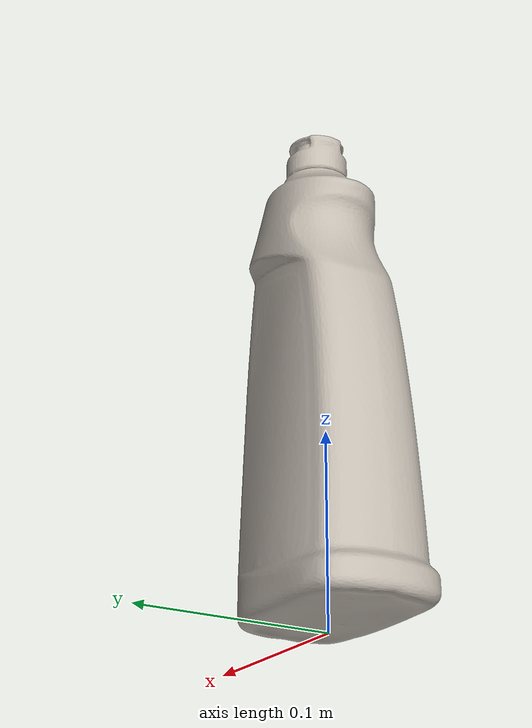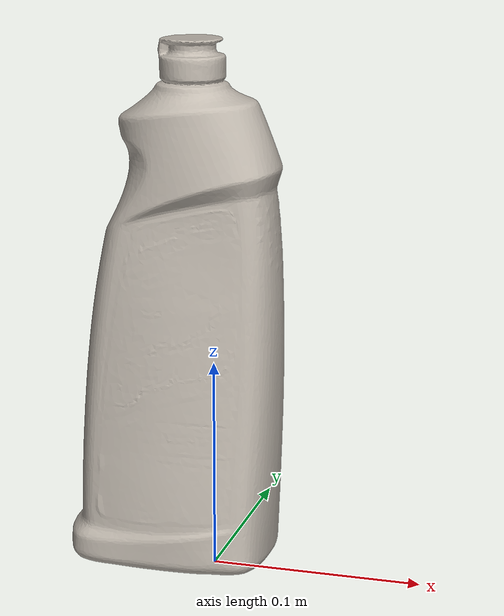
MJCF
<mujoco model="bleach_cleanser">
  <compiler angle="radian" meshdir="assets" texturedir="assets"/>
    <default>
        <default class="ycb_col">
            <geom contype="1" conaffinity="1" group="3" rgba=".4 .5 .6 1"/>
        </default>
        <default class="ycb_viz">
            <geom contype="0" conaffinity="0" type="mesh" mass="0"/>
        </default>
    </default>

  <asset>
    <texture type="2d" name="bleach_cleanser_tex" file="texture_map.png"/>
    <material name="bleach_cleanser_mat" texture="bleach_cleanser_tex" specular="0.5" shininess="0.5"/>
    <mesh file="textured.obj" name="bleach_cleanser"/>
    <mesh file="textured_collision_0.obj" name="bleach_cleanser_collision_0"/>
    <mesh file="textured_collision_1.obj" name="bleach_cleanser_collision_1"/>
    <mesh file="textured_collision_2.obj" name="bleach_cleanser_collision_2"/>
  </asset>
  <worldbody>
      <geom class="ycb_viz" material="bleach_cleanser_mat" mesh="bleach_cleanser"/>
      <geom class="ycb_col" mesh="bleach_cleanser_collision_0" conaffinity="1" condim="4" friction="0.1 0.1 0.1" mass="0.9134121821636101" rgba="1 1 1 1" solimp="0.99 0.99 0.01" solref=".001 0.1" type="mesh" group="3"/>
      <geom class="ycb_col" mesh="bleach_cleanser_collision_1" conaffinity="1" condim="4" friction="0.1 0.1 0.1" mass="0.20052975497832107" rgba="1 1 1 1" solimp="0.99 0.99 0.01" solref=".001 0.1" type="mesh" group="3"/>
      <geom class="ycb_col" mesh="bleach_cleanser_collision_2" conaffinity="1" condim="4" friction="0.1 0.1 0.1" mass="0.01705806285806892" rgba="1 1 1 1" solimp="0.99 0.99 0.01" solref=".001 0.1" type="mesh" group="3"/>
  </worldbody>
</mujoco>
